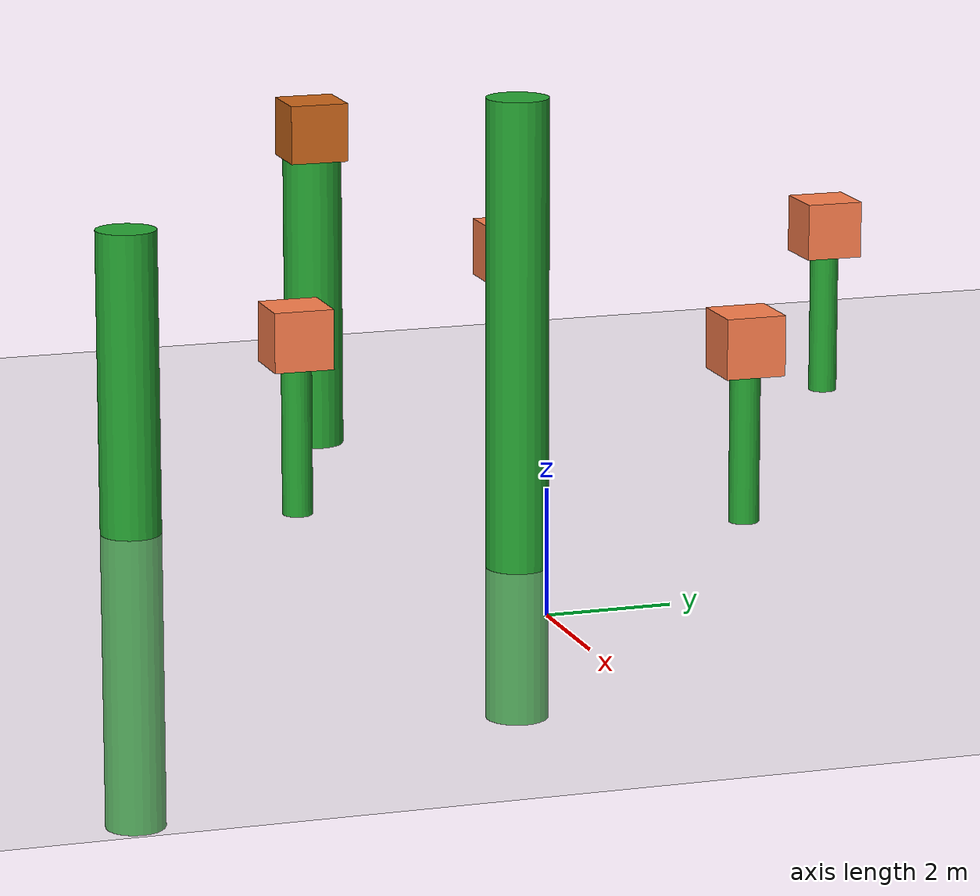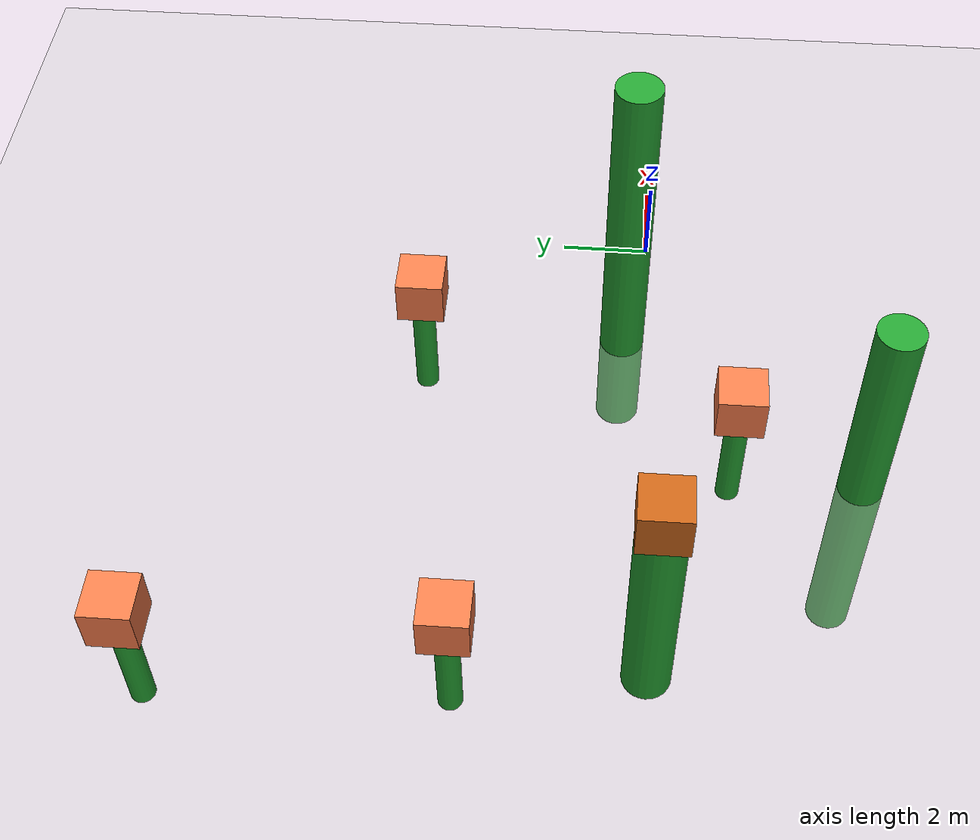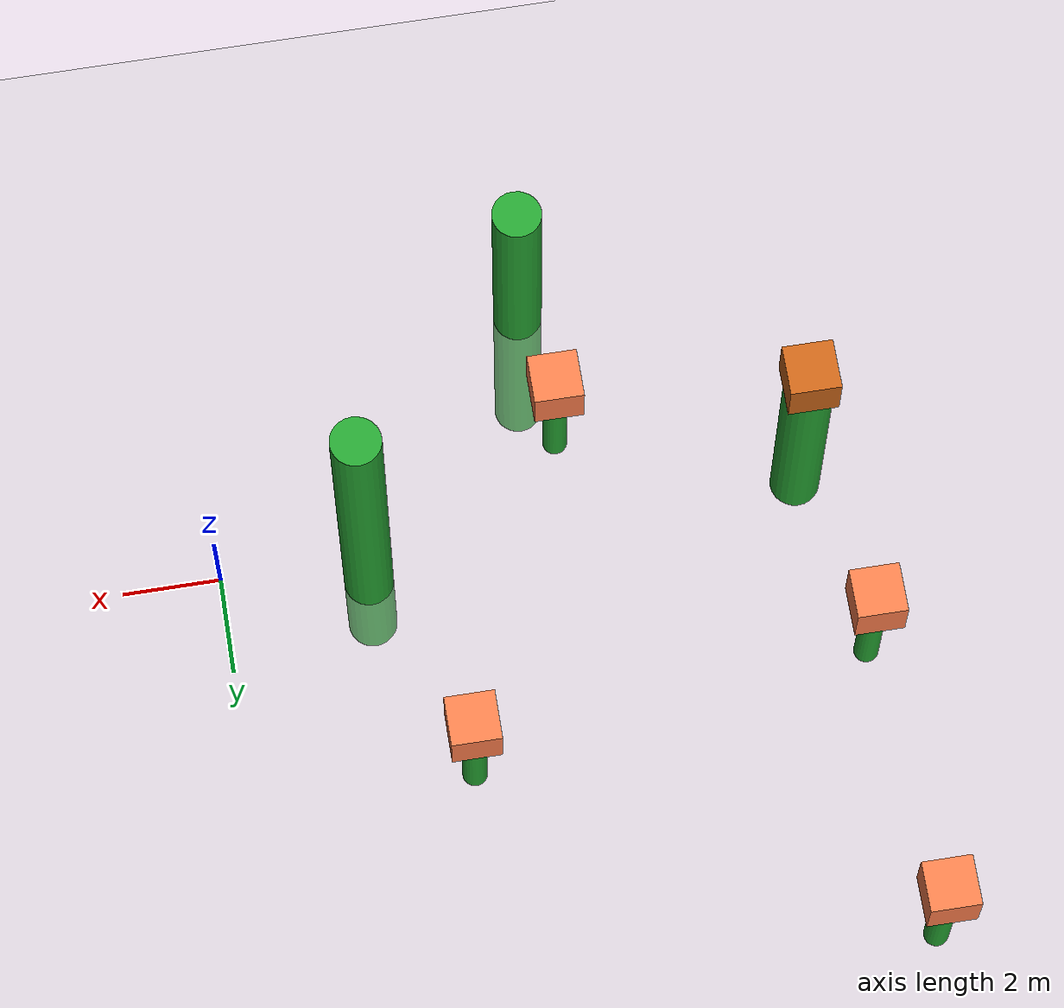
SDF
<sdf version="1.7">
 <world name="default">
  <model name="ground_plane">
   <static>1</static>
   <link name="link">
    <collision name="collision">
     <geometry><plane><normal>0 0 1</normal><size>100 100</size></plane></geometry>
     <surface>
      <contact><collide_bitmask>65535</collide_bitmask></contact>
      <friction><ode><mu>100</mu><mu2>50</mu2></ode></friction>
     </surface>
    </collision>
    <visual name="visual">
     <cast_shadows>0</cast_shadows>
     <geometry><plane><normal>0 0 1</normal><size>100 100</size></plane></geometry>
     <material>
      <script><uri>file://media/materials/scripts/gazebo.material</uri><name>Gazebo/Grey</name></script>
     </material>
    </visual>
   </link>
  </model>
  <model name="unit_cylinder_green_2_clone">
   <link name="link">
    <inertial>
     <mass>1</mass>
     <inertia><ixx>0.145833</ixx><ixy>0</ixy><ixz>0</ixz><iyy>0.145833</iyy><iyz>0</iyz><izz>0.125</izz></inertia>
    </inertial>
    <visual name="visual">
     <geometry><cylinder><radius>0.5</radius><length>10</length></cylinder></geometry>
     <material>
      <script><name>Gazebo/Green</name><uri>file://media/materials/scripts/gazebo.material</uri></script>
      <shader type="pixel"><normal_map>__default__</normal_map></shader>
      <ambient>0 1 0.3 1</ambient>
      <diffuse>0.7 0.7 0.7 1</diffuse>
      <specular>0.01 0.01 0.01 1</specular>
      <emissive>0 0 0 1</emissive>
     </material>
    </visual>
    <collision name="collision">
     <geometry><cylinder><radius>0.5</radius><length>5</length></cylinder></geometry>
     <surface>
      <friction>
       <ode><mu>1</mu><mu2>1</mu2><fdir1>0 0 0</fdir1><slip1>0</slip1><slip2>0</slip2></ode>
       <torsional>
        <coefficient>1</coefficient>
        <patch_radius>0</patch_radius>
        <surface_radius>0</surface_radius>
        <use_patch_radius>1</use_patch_radius>
        <ode><slip>0</slip></ode>
       </torsional>
      </friction>
      <bounce><restitution_coefficient>0</restitution_coefficient><threshold>1e+06</threshold></bounce>
      <contact>
       <collide_without_contact>0</collide_without_contact>
       <collide_without_contact_bitmask>1</collide_without_contact_bitmask>
       <collide_bitmask>1</collide_bitmask>
       <ode>
        <soft_cfm>0</soft_cfm>
        <soft_erp>0.2</soft_erp>
        <kp>1e+13</kp>
        <kd>1</kd>
        <max_vel>0.01</max_vel>
        <min_depth>0</min_depth>
       </ode>
       <bullet>
        <split_impulse>1</split_impulse>
        <split_impulse_penetration_threshold>-0.01</split_impulse_penetration_threshold>
        <soft_cfm>0</soft_cfm>
        <soft_erp>0.2</soft_erp>
        <kp>1e+13</kp>
        <kd>1</kd>
       </bullet>
      </contact>
     </surface>
    </collision>
   </link>
   <static>1</static>
   <pose>-6.85738 -4.80035 0 0 -0 0</pose>
  </model>
  <model name="unit_cylinder_green_2_clone_clone_3">
   <link name="link">
    <inertial>
     <mass>1</mass>
     <inertia><ixx>0.145833</ixx><ixy>0</ixy><ixz>0</ixz><iyy>0.145833</iyy><iyz>0</iyz><izz>0.125</izz></inertia>
    </inertial>
    <visual name="visual">
     <geometry><cylinder><radius>0.5</radius><length>10</length></cylinder></geometry>
     <material>
      <script><name>Gazebo/Green</name><uri>file://media/materials/scripts/gazebo.material</uri></script>
      <shader type="pixel"><normal_map>__default__</normal_map></shader>
      <ambient>0 1 0.3 1</ambient>
      <diffuse>0.7 0.7 0.7 1</diffuse>
      <specular>0.01 0.01 0.01 1</specular>
      <emissive>0 0 0 1</emissive>
     </material>
    </visual>
    <collision name="collision">
     <geometry><cylinder><radius>0.5</radius><length>5</length></cylinder></geometry>
     <surface>
      <friction>
       <ode><mu>1</mu><mu2>1</mu2><fdir1>0 0 0</fdir1><slip1>0</slip1><slip2>0</slip2></ode>
       <torsional>
        <coefficient>1</coefficient>
        <patch_radius>0</patch_radius>
        <surface_radius>0</surface_radius>
        <use_patch_radius>1</use_patch_radius>
        <ode><slip>0</slip></ode>
       </torsional>
      </friction>
      <bounce><restitution_coefficient>0</restitution_coefficient><threshold>1e+06</threshold></bounce>
      <contact>
       <collide_without_contact>0</collide_without_contact>
       <collide_without_contact_bitmask>1</collide_without_contact_bitmask>
       <collide_bitmask>1</collide_bitmask>
       <ode>
        <soft_cfm>0</soft_cfm>
        <soft_erp>0.2</soft_erp>
        <kp>1e+13</kp>
        <kd>1</kd>
        <max_vel>0.01</max_vel>
        <min_depth>0</min_depth>
       </ode>
       <bullet>
        <split_impulse>1</split_impulse>
        <split_impulse_penetration_threshold>-0.01</split_impulse_penetration_threshold>
        <soft_cfm>0</soft_cfm>
        <soft_erp>0.2</soft_erp>
        <kp>1e+13</kp>
        <kd>1</kd>
       </bullet>
      </contact>
     </surface>
    </collision>
   </link>
   <static>1</static>
   <pose>-2.96619 0.500277 2.5 0 0 -0.000967</pose>
  </model>
  <model name="unit_cylinder_green_2_clone_clone_3_clone_0_clone_0_clone_13">
   <link name="link">
    <inertial>
     <mass>1</mass>
     <inertia><ixx>0.145833</ixx><ixy>0</ixy><ixz>0</ixz><iyy>0.145833</iyy><iyz>0</iyz><izz>0.125</izz></inertia>
    </inertial>
    <visual name="visual">
     <geometry><cylinder><radius>0.5</radius><length>5</length></cylinder></geometry>
     <material>
      <script><name>Gazebo/Green</name><uri>file://media/materials/scripts/gazebo.material</uri></script>
      <shader type="pixel"><normal_map>__default__</normal_map></shader>
      <ambient>0 1 0.3 1</ambient>
      <diffuse>0.7 0.7 0.7 1</diffuse>
      <specular>0.01 0.01 0.01 1</specular>
      <emissive>0 0 0 1</emissive>
     </material>
    </visual>
    <collision name="collision">
     <geometry><cylinder><radius>0.5</radius><length>5</length></cylinder></geometry>
     <surface>
      <friction>
       <ode><mu>1</mu><mu2>1</mu2><fdir1>0 0 0</fdir1><slip1>0</slip1><slip2>0</slip2></ode>
       <torsional>
        <coefficient>1</coefficient>
        <patch_radius>0</patch_radius>
        <surface_radius>0</surface_radius>
        <use_patch_radius>1</use_patch_radius>
        <ode><slip>0</slip></ode>
       </torsional>
      </friction>
      <bounce><restitution_coefficient>0</restitution_coefficient><threshold>1e+06</threshold></bounce>
      <contact>
       <collide_without_contact>0</collide_without_contact>
       <collide_without_contact_bitmask>1</collide_without_contact_bitmask>
       <collide_bitmask>1</collide_bitmask>
       <ode>
        <soft_cfm>0</soft_cfm>
        <soft_erp>0.2</soft_erp>
        <kp>1e+13</kp>
        <kd>1</kd>
        <max_vel>0.01</max_vel>
        <min_depth>0</min_depth>
       </ode>
       <bullet>
        <split_impulse>1</split_impulse>
        <split_impulse_penetration_threshold>-0.01</split_impulse_penetration_threshold>
        <soft_cfm>0</soft_cfm>
        <soft_erp>0.2</soft_erp>
        <kp>1e+13</kp>
        <kd>1</kd>
       </bullet>
      </contact>
     </surface>
    </collision>
   </link>
   <link name="link_3">
    <inertial>
     <mass>1</mass>
     <inertia>
      <ixx>0.166667</ixx>
      <ixy>0</ixy>
      <ixz>0</ixz>
      <iyy>0.166667</iyy>
      <iyz>0</iyz>
      <izz>0.166667</izz>
     </inertia>
    </inertial>
    <pose>0 0 3 0 -0 0.000935</pose>
    <visual name="visual">
     <geometry><box><size>1 1 1</size></box></geometry>
     <material>
      <lighting>1</lighting>
      <script><uri>file://media/materials/scripts/gazebo.material</uri><name>Gazebo/Grey</name></script>
      <shader type="pixel"><normal_map>__default__</normal_map></shader>
      <ambient>0.8 0.4 0.1 1</ambient>
      <diffuse>0.7 0.7 0.7 1</diffuse>
      <specular>0.01 0.01 0.01 1</specular>
      <emissive>0 0 0 1</emissive>
     </material>
    </visual>
    <collision name="collision">
     <geometry><box><size>1 1 1</size></box></geometry>
     <surface>
      <friction>
       <ode><mu>1</mu><mu2>1</mu2><fdir1>0 0 0</fdir1><slip1>0</slip1><slip2>0</slip2></ode>
       <torsional>
        <coefficient>1</coefficient>
        <patch_radius>0</patch_radius>
        <surface_radius>0</surface_radius>
        <use_patch_radius>1</use_patch_radius>
        <ode><slip>0</slip></ode>
       </torsional>
      </friction>
      <bounce><restitution_coefficient>0</restitution_coefficient><threshold>1e+06</threshold></bounce>
      <contact>
       <collide_without_contact>0</collide_without_contact>
       <collide_without_contact_bitmask>1</collide_without_contact_bitmask>
       <collide_bitmask>1</collide_bitmask>
       <ode>
        <soft_cfm>0</soft_cfm>
        <soft_erp>0.2</soft_erp>
        <kp>1e+13</kp>
        <kd>1</kd>
        <max_vel>0.01</max_vel>
        <min_depth>0</min_depth>
       </ode>
       <bullet>
        <split_impulse>1</split_impulse>
        <split_impulse_penetration_threshold>-0.01</split_impulse_penetration_threshold>
        <soft_cfm>0</soft_cfm>
        <soft_erp>0.2</soft_erp>
        <kp>1e+13</kp>
        <kd>1</kd>
       </bullet>
      </contact>
     </surface>
    </collision>
   </link>
   <static>1</static>
   <pose>-11.8706 -0.254392 2.49999 0 0 -0.000935</pose>
  </model>
  <model name="unit_cylinder_green_2_clone_clone_3_clone_0_clone_0_clone_45">
   <link name="link">
    <inertial>
     <mass>1</mass>
     <inertia><ixx>0.145833</ixx><ixy>0</ixy><ixz>0</ixz><iyy>0.145833</iyy><iyz>0</iyz><izz>0.125</izz></inertia>
    </inertial>
    <pose>0 0 -1.25 0 -0 0</pose>
    <visual name="visual">
     <geometry><cylinder><radius>0.25</radius><length>2.5</length></cylinder></geometry>
     <material>
      <script><name>Gazebo/Green</name><uri>file://media/materials/scripts/gazebo.material</uri></script>
      <shader type="pixel"><normal_map>__default__</normal_map></shader>
      <ambient>0 1 0.3 1</ambient>
      <diffuse>0.7 0.7 0.7 1</diffuse>
      <specular>0.01 0.01 0.01 1</specular>
      <emissive>0 0 0 1</emissive>
     </material>
    </visual>
    <collision name="collision">
     <geometry><cylinder><radius>0.5</radius><length>5</length></cylinder></geometry>
     <surface>
      <friction>
       <ode><mu>1</mu><mu2>1</mu2><fdir1>0 0 0</fdir1><slip1>0</slip1><slip2>0</slip2></ode>
       <torsional>
        <coefficient>1</coefficient>
        <patch_radius>0</patch_radius>
        <surface_radius>0</surface_radius>
        <use_patch_radius>1</use_patch_radius>
        <ode><slip>0</slip></ode>
       </torsional>
      </friction>
      <bounce><restitution_coefficient>0</restitution_coefficient><threshold>1e+06</threshold></bounce>
      <contact>
       <collide_without_contact>0</collide_without_contact>
       <collide_without_contact_bitmask>1</collide_without_contact_bitmask>
       <collide_bitmask>1</collide_bitmask>
       <ode>
        <soft_cfm>0</soft_cfm>
        <soft_erp>0.2</soft_erp>
        <kp>1e+13</kp>
        <kd>1</kd>
        <max_vel>0.01</max_vel>
        <min_depth>0</min_depth>
       </ode>
       <bullet>
        <split_impulse>1</split_impulse>
        <split_impulse_penetration_threshold>-0.01</split_impulse_penetration_threshold>
        <soft_cfm>0</soft_cfm>
        <soft_erp>0.2</soft_erp>
        <kp>1e+13</kp>
        <kd>1</kd>
       </bullet>
      </contact>
     </surface>
    </collision>
   </link>
   <link name="link_3">
    <inertial>
     <mass>1</mass>
     <inertia>
      <ixx>0.166667</ixx>
      <ixy>0</ixy>
      <ixz>0</ixz>
      <iyy>0.166667</iyy>
      <iyz>0</iyz>
      <izz>0.166667</izz>
     </inertia>
    </inertial>
    <pose>0 0 0.5 0 -0 0.000935</pose>
    <visual name="visual">
     <geometry><box><size>1 1 1</size></box></geometry>
     <material>
      <lighting>1</lighting>
      <script><uri>file://media/materials/scripts/gazebo.material</uri><name>Gazebo/Grey</name></script>
      <shader type="pixel"><normal_map>__default__</normal_map></shader>
      <ambient>1 0.5 0.3 1</ambient>
      <diffuse>0.7 0.7 0.7 1</diffuse>
      <specular>0.01 0.01 0.01 1</specular>
      <emissive>0 0 0 1</emissive>
     </material>
    </visual>
    <collision name="collision">
     <geometry><box><size>1 1 1</size></box></geometry>
     <surface>
      <friction>
       <ode><mu>1</mu><mu2>1</mu2><fdir1>0 0 0</fdir1><slip1>0</slip1><slip2>0</slip2></ode>
       <torsional>
        <coefficient>1</coefficient>
        <patch_radius>0</patch_radius>
        <surface_radius>0</surface_radius>
        <use_patch_radius>1</use_patch_radius>
        <ode><slip>0</slip></ode>
       </torsional>
      </friction>
      <bounce><restitution_coefficient>0</restitution_coefficient><threshold>1e+06</threshold></bounce>
      <contact>
       <collide_without_contact>0</collide_without_contact>
       <collide_without_contact_bitmask>1</collide_without_contact_bitmask>
       <collide_bitmask>1</collide_bitmask>
       <ode>
        <soft_cfm>0</soft_cfm>
        <soft_erp>0.2</soft_erp>
        <kp>1e+13</kp>
        <kd>1</kd>
        <max_vel>0.01</max_vel>
        <min_depth>0</min_depth>
       </ode>
       <bullet>
        <split_impulse>1</split_impulse>
        <split_impulse_penetration_threshold>-0.01</split_impulse_penetration_threshold>
        <soft_cfm>0</soft_cfm>
        <soft_erp>0.2</soft_erp>
        <kp>1e+13</kp>
        <kd>1</kd>
       </bullet>
      </contact>
     </surface>
    </collision>
   </link>
   <static>1</static>
   <pose>-4.45782 4.88977 2.49999 0 0 -0.000935</pose>
  </model>
  <model name="unit_cylinder_green_2_clone_clone_3_clone_0_clone_0_clone_48">
   <link name="link">
    <inertial>
     <mass>1</mass>
     <inertia><ixx>0.145833</ixx><ixy>0</ixy><ixz>0</ixz><iyy>0.145833</iyy><iyz>0</iyz><izz>0.125</izz></inertia>
    </inertial>
    <pose>0 0 -1.25 0 -0 0</pose>
    <visual name="visual">
     <geometry><cylinder><radius>0.25</radius><length>2.5</length></cylinder></geometry>
     <material>
      <script><name>Gazebo/Green</name><uri>file://media/materials/scripts/gazebo.material</uri></script>
      <shader type="pixel"><normal_map>__default__</normal_map></shader>
      <ambient>0 1 0.3 1</ambient>
      <diffuse>0.7 0.7 0.7 1</diffuse>
      <specular>0.01 0.01 0.01 1</specular>
      <emissive>0 0 0 1</emissive>
     </material>
    </visual>
    <collision name="collision">
     <geometry><cylinder><radius>0.5</radius><length>5</length></cylinder></geometry>
     <surface>
      <friction>
       <ode><mu>1</mu><mu2>1</mu2><fdir1>0 0 0</fdir1><slip1>0</slip1><slip2>0</slip2></ode>
       <torsional>
        <coefficient>1</coefficient>
        <patch_radius>0</patch_radius>
        <surface_radius>0</surface_radius>
        <use_patch_radius>1</use_patch_radius>
        <ode><slip>0</slip></ode>
       </torsional>
      </friction>
      <bounce><restitution_coefficient>0</restitution_coefficient><threshold>1e+06</threshold></bounce>
      <contact>
       <collide_without_contact>0</collide_without_contact>
       <collide_without_contact_bitmask>1</collide_without_contact_bitmask>
       <collide_bitmask>1</collide_bitmask>
       <ode>
        <soft_cfm>0</soft_cfm>
        <soft_erp>0.2</soft_erp>
        <kp>1e+13</kp>
        <kd>1</kd>
        <max_vel>0.01</max_vel>
        <min_depth>0</min_depth>
       </ode>
       <bullet>
        <split_impulse>1</split_impulse>
        <split_impulse_penetration_threshold>-0.01</split_impulse_penetration_threshold>
        <soft_cfm>0</soft_cfm>
        <soft_erp>0.2</soft_erp>
        <kp>1e+13</kp>
        <kd>1</kd>
       </bullet>
      </contact>
     </surface>
    </collision>
   </link>
   <link name="link_3">
    <inertial>
     <mass>1</mass>
     <inertia>
      <ixx>0.166667</ixx>
      <ixy>0</ixy>
      <ixz>0</ixz>
      <iyy>0.166667</iyy>
      <iyz>0</iyz>
      <izz>0.166667</izz>
     </inertia>
    </inertial>
    <pose>0 0 0.5 0 -0 0.000935</pose>
    <visual name="visual">
     <geometry><box><size>1 1 1</size></box></geometry>
     <material>
      <lighting>1</lighting>
      <script><uri>file://media/materials/scripts/gazebo.material</uri><name>Gazebo/Grey</name></script>
      <shader type="pixel"><normal_map>__default__</normal_map></shader>
      <ambient>1 0.5 0.3 1</ambient>
      <diffuse>0.7 0.7 0.7 1</diffuse>
      <specular>0.01 0.01 0.01 1</specular>
      <emissive>0 0 0 1</emissive>
     </material>
    </visual>
    <collision name="collision">
     <geometry><box><size>1 1 1</size></box></geometry>
     <surface>
      <friction>
       <ode><mu>1</mu><mu2>1</mu2><fdir1>0 0 0</fdir1><slip1>0</slip1><slip2>0</slip2></ode>
       <torsional>
        <coefficient>1</coefficient>
        <patch_radius>0</patch_radius>
        <surface_radius>0</surface_radius>
        <use_patch_radius>1</use_patch_radius>
        <ode><slip>0</slip></ode>
       </torsional>
      </friction>
      <bounce><restitution_coefficient>0</restitution_coefficient><threshold>1e+06</threshold></bounce>
      <contact>
       <collide_without_contact>0</collide_without_contact>
       <collide_without_contact_bitmask>1</collide_without_contact_bitmask>
       <collide_bitmask>1</collide_bitmask>
       <ode>
        <soft_cfm>0</soft_cfm>
        <soft_erp>0.2</soft_erp>
        <kp>1e+13</kp>
        <kd>1</kd>
        <max_vel>0.01</max_vel>
        <min_depth>0</min_depth>
       </ode>
       <bullet>
        <split_impulse>1</split_impulse>
        <split_impulse_penetration_threshold>-0.01</split_impulse_penetration_threshold>
        <soft_cfm>0</soft_cfm>
        <soft_erp>0.2</soft_erp>
        <kp>1e+13</kp>
        <kd>1</kd>
       </bullet>
      </contact>
     </surface>
    </collision>
   </link>
   <static>1</static>
   <pose>-12.909 9.59416 2.49999 0 0 -0.000935</pose>
  </model>
  <model name="unit_cylinder_green_2_clone_clone_3_clone_0_clone_0_clone_49">
   <link name="link">
    <inertial>
     <mass>1</mass>
     <inertia><ixx>0.145833</ixx><ixy>0</ixy><ixz>0</ixz><iyy>0.145833</iyy><iyz>0</iyz><izz>0.125</izz></inertia>
    </inertial>
    <pose>0 0 -1.25 0 -0 0</pose>
    <visual name="visual">
     <geometry><cylinder><radius>0.25</radius><length>2.5</length></cylinder></geometry>
     <material>
      <script><name>Gazebo/Green</name><uri>file://media/materials/scripts/gazebo.material</uri></script>
      <shader type="pixel"><normal_map>__default__</normal_map></shader>
      <ambient>0 1 0.3 1</ambient>
      <diffuse>0.7 0.7 0.7 1</diffuse>
      <specular>0.01 0.01 0.01 1</specular>
      <emissive>0 0 0 1</emissive>
     </material>
    </visual>
    <collision name="collision">
     <geometry><cylinder><radius>0.5</radius><length>5</length></cylinder></geometry>
     <surface>
      <friction>
       <ode><mu>1</mu><mu2>1</mu2><fdir1>0 0 0</fdir1><slip1>0</slip1><slip2>0</slip2></ode>
       <torsional>
        <coefficient>1</coefficient>
        <patch_radius>0</patch_radius>
        <surface_radius>0</surface_radius>
        <use_patch_radius>1</use_patch_radius>
        <ode><slip>0</slip></ode>
       </torsional>
      </friction>
      <bounce><restitution_coefficient>0</restitution_coefficient><threshold>1e+06</threshold></bounce>
      <contact>
       <collide_without_contact>0</collide_without_contact>
       <collide_without_contact_bitmask>1</collide_without_contact_bitmask>
       <collide_bitmask>1</collide_bitmask>
       <ode>
        <soft_cfm>0</soft_cfm>
        <soft_erp>0.2</soft_erp>
        <kp>1e+13</kp>
        <kd>1</kd>
        <max_vel>0.01</max_vel>
        <min_depth>0</min_depth>
       </ode>
       <bullet>
        <split_impulse>1</split_impulse>
        <split_impulse_penetration_threshold>-0.01</split_impulse_penetration_threshold>
        <soft_cfm>0</soft_cfm>
        <soft_erp>0.2</soft_erp>
        <kp>1e+13</kp>
        <kd>1</kd>
       </bullet>
      </contact>
     </surface>
    </collision>
   </link>
   <link name="link_3">
    <inertial>
     <mass>1</mass>
     <inertia>
      <ixx>0.166667</ixx>
      <ixy>0</ixy>
      <ixz>0</ixz>
      <iyy>0.166667</iyy>
      <iyz>0</iyz>
      <izz>0.166667</izz>
     </inertia>
    </inertial>
    <pose>0 0 0.5 0 -0 0.000935</pose>
    <visual name="visual">
     <geometry><box><size>1 1 1</size></box></geometry>
     <material>
      <lighting>1</lighting>
      <script><uri>file://media/materials/scripts/gazebo.material</uri><name>Gazebo/Grey</name></script>
      <shader type="pixel"><normal_map>__default__</normal_map></shader>
      <ambient>1 0.5 0.3 1</ambient>
      <diffuse>0.7 0.7 0.7 1</diffuse>
      <specular>0.01 0.01 0.01 1</specular>
      <emissive>0 0 0 1</emissive>
     </material>
    </visual>
    <collision name="collision">
     <geometry><box><size>1 1 1</size></box></geometry>
     <surface>
      <friction>
       <ode><mu>1</mu><mu2>1</mu2><fdir1>0 0 0</fdir1><slip1>0</slip1><slip2>0</slip2></ode>
       <torsional>
        <coefficient>1</coefficient>
        <patch_radius>0</patch_radius>
        <surface_radius>0</surface_radius>
        <use_patch_radius>1</use_patch_radius>
        <ode><slip>0</slip></ode>
       </torsional>
      </friction>
      <bounce><restitution_coefficient>0</restitution_coefficient><threshold>1e+06</threshold></bounce>
      <contact>
       <collide_without_contact>0</collide_without_contact>
       <collide_without_contact_bitmask>1</collide_without_contact_bitmask>
       <collide_bitmask>1</collide_bitmask>
       <ode>
        <soft_cfm>0</soft_cfm>
        <soft_erp>0.2</soft_erp>
        <kp>1e+13</kp>
        <kd>1</kd>
        <max_vel>0.01</max_vel>
        <min_depth>0</min_depth>
       </ode>
       <bullet>
        <split_impulse>1</split_impulse>
        <split_impulse_penetration_threshold>-0.01</split_impulse_penetration_threshold>
        <soft_cfm>0</soft_cfm>
        <soft_erp>0.2</soft_erp>
        <kp>1e+13</kp>
        <kd>1</kd>
       </bullet>
      </contact>
     </surface>
    </collision>
   </link>
   <static>1</static>
   <pose>-12.6426 3.55503 2.49999 0 0 -0.000935</pose>
  </model>
  <model name="unit_cylinder_green_2_clone_clone_3_clone_0_clone_0_clone_50">
   <link name="link">
    <inertial>
     <mass>1</mass>
     <inertia><ixx>0.145833</ixx><ixy>0</ixy><ixz>0</ixz><iyy>0.145833</iyy><iyz>0</iyz><izz>0.125</izz></inertia>
    </inertial>
    <pose>0 0 -1.25 0 -0 0</pose>
    <visual name="visual">
     <geometry><cylinder><radius>0.25</radius><length>2.5</length></cylinder></geometry>
     <material>
      <script><name>Gazebo/Green</name><uri>file://media/materials/scripts/gazebo.material</uri></script>
      <shader type="pixel"><normal_map>__default__</normal_map></shader>
      <ambient>0 1 0.3 1</ambient>
      <diffuse>0.7 0.7 0.7 1</diffuse>
      <specular>0.01 0.01 0.01 1</specular>
      <emissive>0 0 0 1</emissive>
     </material>
    </visual>
    <collision name="collision">
     <geometry><cylinder><radius>0.5</radius><length>5</length></cylinder></geometry>
     <surface>
      <friction>
       <ode><mu>1</mu><mu2>1</mu2><fdir1>0 0 0</fdir1><slip1>0</slip1><slip2>0</slip2></ode>
       <torsional>
        <coefficient>1</coefficient>
        <patch_radius>0</patch_radius>
        <surface_radius>0</surface_radius>
        <use_patch_radius>1</use_patch_radius>
        <ode><slip>0</slip></ode>
       </torsional>
      </friction>
      <bounce><restitution_coefficient>0</restitution_coefficient><threshold>1e+06</threshold></bounce>
      <contact>
       <collide_without_contact>0</collide_without_contact>
       <collide_without_contact_bitmask>1</collide_without_contact_bitmask>
       <collide_bitmask>1</collide_bitmask>
       <ode>
        <soft_cfm>0</soft_cfm>
        <soft_erp>0.2</soft_erp>
        <kp>1e+13</kp>
        <kd>1</kd>
        <max_vel>0.01</max_vel>
        <min_depth>0</min_depth>
       </ode>
       <bullet>
        <split_impulse>1</split_impulse>
        <split_impulse_penetration_threshold>-0.01</split_impulse_penetration_threshold>
        <soft_cfm>0</soft_cfm>
        <soft_erp>0.2</soft_erp>
        <kp>1e+13</kp>
        <kd>1</kd>
       </bullet>
      </contact>
     </surface>
    </collision>
   </link>
   <link name="link_3">
    <inertial>
     <mass>1</mass>
     <inertia>
      <ixx>0.166667</ixx>
      <ixy>0</ixy>
      <ixz>0</ixz>
      <iyy>0.166667</iyy>
      <iyz>0</iyz>
      <izz>0.166667</izz>
     </inertia>
    </inertial>
    <pose>0 0 0.5 0 -0 0.000935</pose>
    <visual name="visual">
     <geometry><box><size>1 1 1</size></box></geometry>
     <material>
      <lighting>1</lighting>
      <script><uri>file://media/materials/scripts/gazebo.material</uri><name>Gazebo/Grey</name></script>
      <shader type="pixel"><normal_map>__default__</normal_map></shader>
      <ambient>1 0.5 0.3 1</ambient>
      <diffuse>0.7 0.7 0.7 1</diffuse>
      <specular>0.01 0.01 0.01 1</specular>
      <emissive>0 0 0 1</emissive>
     </material>
    </visual>
    <collision name="collision">
     <geometry><box><size>1 1 1</size></box></geometry>
     <surface>
      <friction>
       <ode><mu>1</mu><mu2>1</mu2><fdir1>0 0 0</fdir1><slip1>0</slip1><slip2>0</slip2></ode>
       <torsional>
        <coefficient>1</coefficient>
        <patch_radius>0</patch_radius>
        <surface_radius>0</surface_radius>
        <use_patch_radius>1</use_patch_radius>
        <ode><slip>0</slip></ode>
       </torsional>
      </friction>
      <bounce><restitution_coefficient>0</restitution_coefficient><threshold>1e+06</threshold></bounce>
      <contact>
       <collide_without_contact>0</collide_without_contact>
       <collide_without_contact_bitmask>1</collide_without_contact_bitmask>
       <collide_bitmask>1</collide_bitmask>
       <ode>
        <soft_cfm>0</soft_cfm>
        <soft_erp>0.2</soft_erp>
        <kp>1e+13</kp>
        <kd>1</kd>
        <max_vel>0.01</max_vel>
        <min_depth>0</min_depth>
       </ode>
       <bullet>
        <split_impulse>1</split_impulse>
        <split_impulse_penetration_threshold>-0.01</split_impulse_penetration_threshold>
        <soft_cfm>0</soft_cfm>
        <soft_erp>0.2</soft_erp>
        <kp>1e+13</kp>
        <kd>1</kd>
       </bullet>
      </contact>
     </surface>
    </collision>
   </link>
   <static>1</static>
   <pose>-7.16868 -1.90303 2.49999 0 0 -0.000935</pose>
  </model>
 </world>
</sdf>
